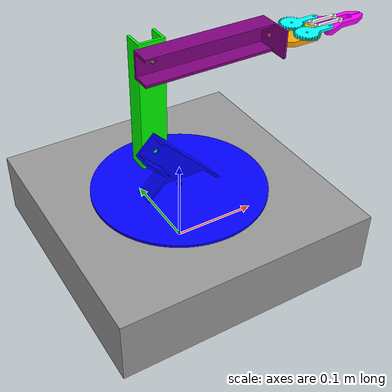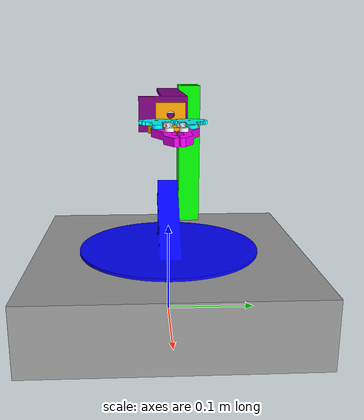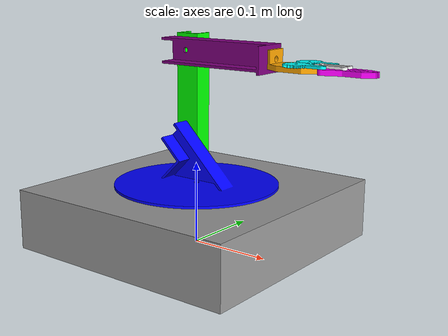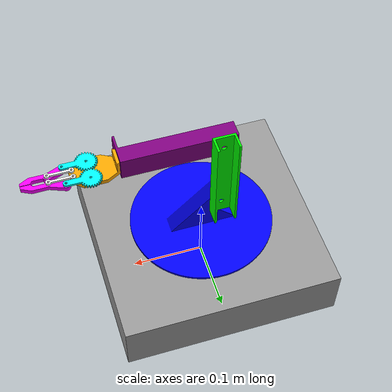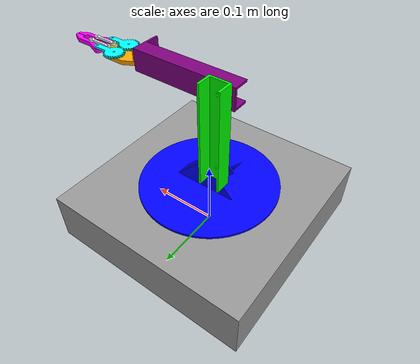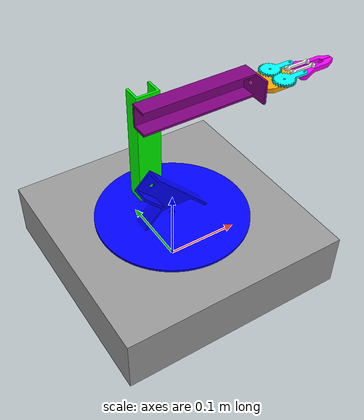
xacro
<?xml version="1.0"?>
<robot xmlns:xacro="http://ros.org/wiki/xacro" name="robotic_arm">

  <!-- Properties -->
  <xacro:property name="mesh_dir" value="package://robotic_arm/meshes"/>

  <!-- Color Properties -->
  <xacro:property name="grey" value="0.6 0.6 0.6 1.0"/>
  <xacro:property name="red" value="1.0 0.0 0.0 1.0"/>
  <xacro:property name="blue" value="0.0 0.0 1.0 1.0"/>
  <xacro:property name="green" value="0.0 1.0 0.0 1.0"/>
  <xacro:property name="black" value="0.0 0.0 0.0 1.0"/>
  <xacro:property name="white" value="1.0 1.0 1.0 1.0"/>
  <xacro:property name="yellow" value="1.0 1.0 0.0 1.0"/>
  <xacro:property name="orange" value="1.0 0.65 0.0 1.0"/>
  <xacro:property name="purple" value="0.5 0.0 0.5 1.0"/>
  <xacro:property name="cyan" value="0.0 1.0 1.0 1.0"/>
  <xacro:property name="magenta" value="1.0 0.0 1.0 1.0"/>
  <xacro:property name="brown" value="0.6 0.3 0.0 1.0"/>
  <xacro:property name="pink" value="1.0 0.75 0.8 1.0"/>
  <xacro:property name="light_grey" value="0.8 0.8 0.8 1.0"/>
  <xacro:property name="dark_grey" value="0.3 0.3 0.3 1.0"/>

  <!-- Link Macro -->
  <xacro:macro name="visual_link" params="link_name mesh_filename material_name color_value mass">
    <link name="${link_name}">
      <visual>
        <geometry>
          <mesh filename="${mesh_dir}/${mesh_filename}" scale="0.001 0.001 0.001"/>
        </geometry>
        <material name="${material_name}">
          <color rgba="${color_value}"/>
        </material>
      </visual>

      <collision>
        <geometry>
          <mesh filename="${mesh_dir}/${mesh_filename}" scale="0.001 0.001 0.001"/>
        </geometry>
      </collision>

      <inertial>
        <origin xyz="0 0 0" rpy="0 0 0"/>
        <mass value="${mass}"/>
        <inertia
          ixx="0.01" ixy="0.0" ixz="0.0"
          iyy="0.01" iyz="0.0"
          izz="0.01"/>
      </inertial>
    </link>
  </xacro:macro>

  <!-- Links -->

  <!-- Dummy parent link -->
  <link name="world_link"/>

  <!-- Base Link -->
  <xacro:visual_link
    link_name="base_link"
    mesh_filename="base-link-arm.stl"
    material_name="Grey"
    color_value="${grey}"
    mass="1.0"/>

  <!-- Rotating Link -->
  <xacro:visual_link
    link_name="rot_link"
    mesh_filename="rot-base-arm.stl"
    material_name="Blue"
    color_value="${blue}"
    mass="0.5"/>

  <!-- Shoulder Link-->
  <xacro:visual_link
    link_name="shoulder_link"
    mesh_filename="shoulder-arm.stl"
    material_name="Green"
    color_value="${green}"
    mass="0.5"/>

  <!-- Elbow Link-->
  <xacro:visual_link
    link_name="elbow_link"
    mesh_filename="elbow-arm.stl"
    material_name="Purple"
    color_value="${purple}"
    mass="0.5"/>

  <!-- Gripper Base Link-->
  <xacro:visual_link
    link_name="grip_base_link"
    mesh_filename="grip-base.stl"
    material_name="Orange"
    color_value="${orange}"
    mass="0.5"/>

  <!-- Gripper Gear Left Link-->
  <xacro:visual_link
    link_name="grip_gl_link"
    mesh_filename="grip-gl.stl"
    material_name="Cyan"
    color_value="${cyan}"
    mass="0.5"/>

  <!-- Gripper Gear Right Link-->
  <xacro:visual_link
    link_name="grip_gr_link"
    mesh_filename="grip-gr.stl"
    material_name="Cyan"
    color_value="${cyan}"
    mass="0.5"/>

  <!-- Gripper Support Left Link-->
  <xacro:visual_link
    link_name="grip_spl_link"
    mesh_filename="grip-sp.stl"
    material_name="White"
    color_value="${white}"
    mass="0.5"/>

  <!-- Gripper Support Right Link-->
  <xacro:visual_link
    link_name="grip_spr_link"
    mesh_filename="grip-sp.stl"
    material_name="White"
    color_value="${white}"
    mass="0.5"/>

  <!-- Gripper Hold Left Link-->
  <xacro:visual_link
    link_name="grip_hl_link"
    mesh_filename="grip-hr.stl"
    material_name="Magenta"
    color_value="${magenta}"
    mass="0.5"/>

  <!-- Gripper Hold Right Link-->
  <xacro:visual_link
    link_name="grip_hr_link"
    mesh_filename="grip-hr.stl"
    material_name="Magenta"
    color_value="${magenta}"
    mass="0.5"/>

  <!-- Joints -->

  <!-- Shift base_link upward by 0.5m -->
  <joint name="world_to_base" type="fixed">
    <parent link="world_link"/>
    <child link="base_link"/>
    <origin xyz="0 0 0.073" rpy="0 0 0"/>
  </joint>

  <!-- Revolute Joint between base_link and rot_link -->
  <joint name="base_to_rot" type="revolute">
    <parent link="base_link"/>
    <child link="rot_link"/>
    <origin xyz="0 0 0" rpy="0 0 0"/>
    <axis xyz="0 0 1"/>
    <limit effort="1.0" velocity="1.0" lower="-3.14" upper="3.14"/>
    <dynamics damping="0.1" friction="0.1"/>
  </joint>

  <!-- Revolute Joint between rot_link and shoulder_link -->
  <joint name="rot_to_shoulder" type="revolute">
    <parent link="rot_link"/>
    <child link="shoulder_link"/>
    <origin xyz="-0.02359 0.0115 0.05159" rpy="-1.57 1.57 0"/>
    <axis xyz="0 0 1"/>
    <limit effort="1.0" velocity="1.0" lower="-1.047" upper="1.57"/>
    <dynamics damping="0.1" friction="0.1"/>
  </joint>

  <!-- Revolute Joint between shoulder_link and elbow_link -->
  <joint name="shoulder_to_elbow" type="revolute">
    <parent link="shoulder_link"/>
    <child link="elbow_link"/>
    <origin xyz="-0.11 0 0" rpy="3.14 0 1.57"/>
    <axis xyz="0 0 1"/>
    <limit effort="1.0" velocity="1.0" lower="-0.785" upper="1.57"/>
    <dynamics damping="0.1" friction="0.1"/>
  </joint>

  <!-- Fixed Joint between elbow_link and grip_base_link -->
  <joint name="elbow_to_grip_base" type="fixed">
    <parent link="elbow_link"/>
    <child link="grip_base_link"/>
    <origin xyz="-0.133 0.0105 0.015" rpy="0 -1.57 1.57"/>
  </joint>

  <!-- Revolute Joint between grip_base_link and grip_gl_link -->
  <joint name="grip_base_to_gl" type="revolute">
    <parent link="grip_base_link"/>
    <child link="grip_gl_link"/>
    <origin xyz="-0.0135 0.0376 0.006" rpy="0 0 0"/>
    <axis xyz="0 0 1"/>
    <limit effort="1.0" velocity="1.0" lower="0" upper="1.9"/>
    <dynamics damping="0.1" friction="0.1"/>
  </joint>

  <!-- Revolute Joint between grip_base_link and grip_gr_link -->
  <joint name="grip_base_to_gr" type="revolute">
    <parent link="grip_base_link"/>
    <child link="grip_gr_link"/>
    <origin xyz="0.0135 0.0376 0.009" rpy="0 0 0"/>
    <axis xyz="0 0 1"/>
    <limit effort="1.0" velocity="1.0" lower="-3.14" upper="3.14"/>
    <dynamics damping="0.1" friction="0.1"/>
    <mimic joint="grip_base_to_gl" multiplier="-1" offset="0"/>
  </joint>

  <!-- Revolute Joint between grip_base_link and grip_spl_link -->
  <joint name="grip_base_to_spl" type="revolute">
    <parent link="grip_base_link"/>
    <child link="grip_spl_link"/>
    <origin xyz="-0.00524 0.058 0.009" rpy="0 0 1.57"/>
    <axis xyz="0 0 1"/>
    <limit effort="1.0" velocity="1.0" lower="-3.14" upper="3.14"/>
    <dynamics damping="0.1" friction="0.1"/>
    <mimic joint="grip_base_to_gl" multiplier="1" offset="0"/>
  </joint>

  <!-- Revolute Joint between grip_base_link and grip_spr_link -->
  <joint name="grip_base_to_spr" type="revolute">
    <parent link="grip_base_link"/>
    <child link="grip_spr_link"/>
    <origin xyz="0.00524 0.058 0.009" rpy="0 0 1.57"/>
    <axis xyz="0 0 1"/>
    <limit effort="1.0" velocity="1.0" lower="-3.14" upper="3.14"/>
    <dynamics damping="0.1" friction="0.1"/>
    <mimic joint="grip_base_to_gl" multiplier="-1" offset="0"/>
  </joint>

  <!-- Revolute Joint between grip_gl_link and grip_hl_link -->
  <joint name="grip_gl_to_hl" type="revolute">
    <parent link="grip_gl_link"/>
    <child link="grip_hl_link"/>
    <origin xyz="0 0.031 0" rpy="0 0 1.186"/>
    <axis xyz="0 0 1"/>
    <limit effort="1.0" velocity="1.0" lower="-3.14" upper="3.14"/>
    <dynamics damping="0.1" friction="0.1"/>
    <mimic joint="grip_base_to_gl" multiplier="-1" offset="0"/>
  </joint>

  <!-- Revolute Joint between grip_gr_link and grip_hr_link -->
  <joint name="grip_gr_to_hr" type="revolute">
    <parent link="grip_gr_link"/>
    <child link="grip_hr_link"/>
    <origin xyz="0 0.031 -0.009" rpy="0 3.14 -1.186"/>
    <axis xyz="0 0 1"/>
    <limit effort="1.0" velocity="1.0" lower="-3.14" upper="3.14"/>
    <dynamics damping="0.1" friction="0.1"/>
    <mimic joint="grip_base_to_gl" multiplier="-1" offset="0"/>
  </joint>

</robot>
